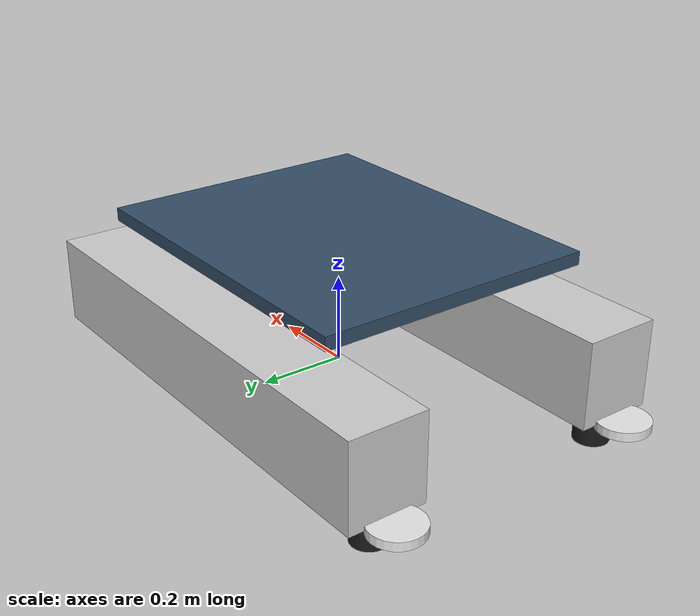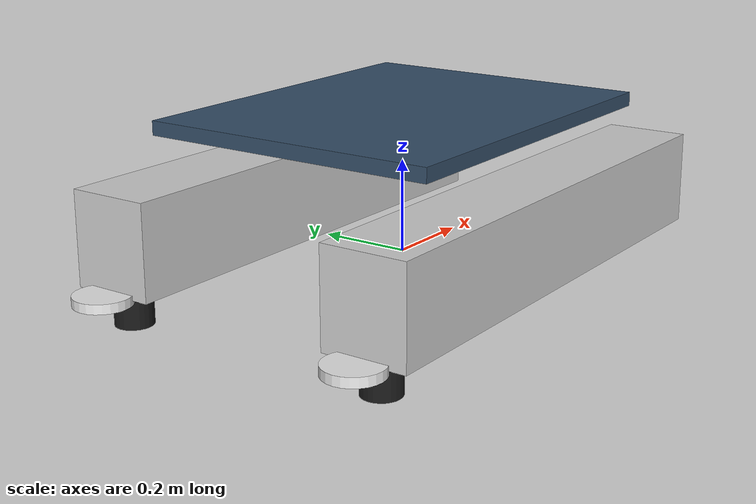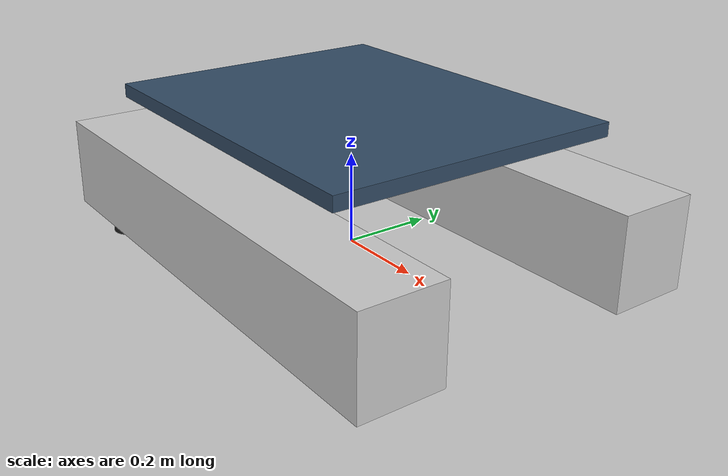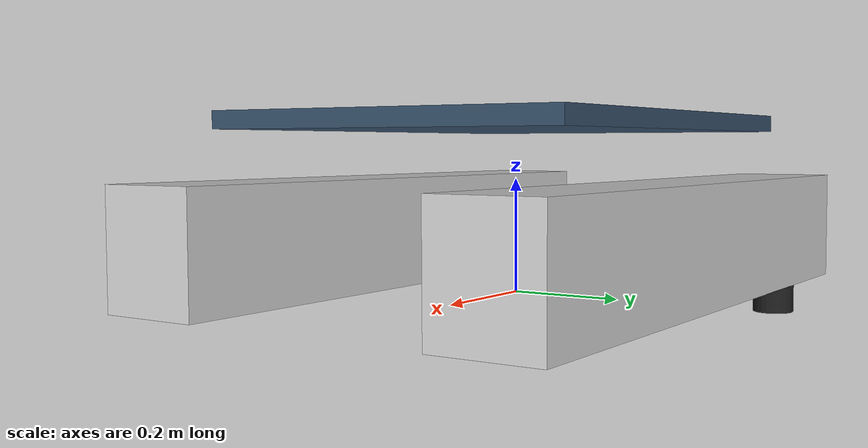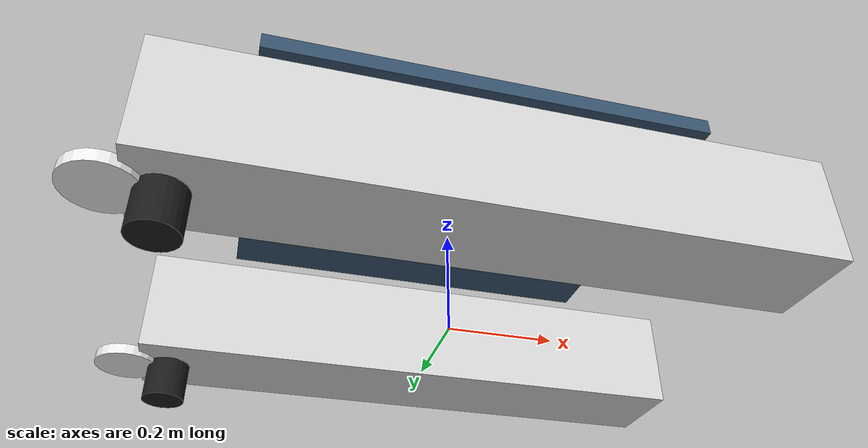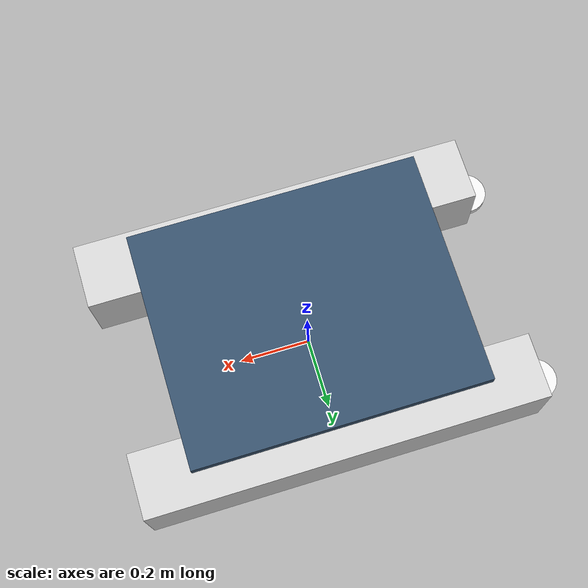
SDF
<?xml version="1.0"?>
<sdf version="1.6">
  <model name="ida_katamaran">
    <!-- Ana gövde linki -->
    <link name="base_link">
      <pose>0 0 0 0 0 0</pose>
      <inertial>
        <pose>0.028 0.008 0.029 0 0 0</pose>
        <mass>32.6</mass>
        <inertia>
          <ixx>0.72</ixx>
          <ixy>0</ixy>
          <ixz>0</ixz>
          <iyy>1.73</iyy>
          <iyz>0</iyz>
          <izz>2.16</izz>
        </inertia>
      </inertial>

      <!-- Sol gövde (float) -->
      <visual name="left_float_visual">
        <pose>0 0.30 0.10 0 0 0</pose>
        <geometry>
          <box>
            <size>1.11 0.18 0.20</size>
          </box>
        </geometry>
        <material>
          <diffuse>0.8 0.8 0.8 1</diffuse>
          <specular>0.2 0.2 0.2 1</specular>
        </material>
      </visual>
      <collision name="left_float_collision">
        <pose>0 0.30 0.10 0 0 0</pose>
        <geometry>
          <box>
            <size>1.11 0.18 0.20</size>
          </box>
        </geometry>
      </collision>

      <!-- Sağ gövde (float) -->
      <visual name="right_float_visual">
        <pose>0 -0.30 0.10 0 0 0</pose>
        <geometry>
          <box>
            <size>1.11 0.18 0.20</size>
          </box>
        </geometry>
        <material>
          <diffuse>0.8 0.8 0.8 1</diffuse>
          <specular>0.2 0.2 0.2 1</specular>
        </material>
      </visual>
      <collision name="right_float_collision">
        <pose>0 -0.30 0.10 0 0 0</pose>
        <geometry>
          <box>
            <size>1.11 0.18 0.20</size>
          </box>
        </geometry>
      </collision>

      <!-- Üst platform (deck) -->
      <visual name="deck_visual">
        <pose>0 0 0.30 0 0 0</pose>
        <geometry>
          <box>
            <size>0.80 0.65 0.03</size>
          </box>
        </geometry>
        <material>
          <diffuse>0.2 0.3 0.4 1</diffuse>
          <specular>0.1 0.1 0.1 1</specular>
        </material>
      </visual>
      <collision name="deck_collision">
        <pose>0 0 0.30 0 0 0</pose>
        <geometry>
          <box>
            <size>0.80 0.65 0.03</size>
          </box>
        </geometry>
      </collision>

      <!-- GPS sensörü -->
      <sensor name="gps_sensor" type="navsat">
        <pose>-0.35 0 0.35 0 0 0</pose>
        <always_on>true</always_on>
        <update_rate>10</update_rate>
        <gps/>
      </sensor>

      <!-- IMU sensörü -->
      <sensor name="imu_sensor" type="imu">
        <pose>0 0 0.25 0 0 0</pose>
        <always_on>true</always_on>
        <update_rate>100</update_rate>
        <imu>
          <angular_velocity>
            <x><noise type="gaussian"><mean>0</mean><stddev>0.009</stddev></noise></x>
            <y><noise type="gaussian"><mean>0</mean><stddev>0.009</stddev></noise></y>
            <z><noise type="gaussian"><mean>0</mean><stddev>0.009</stddev></noise></z>
          </angular_velocity>
          <linear_acceleration>
            <x><noise type="gaussian"><mean>0</mean><stddev>0.021</stddev></noise></x>
            <y><noise type="gaussian"><mean>0</mean><stddev>0.021</stddev></noise></y>
            <z><noise type="gaussian"><mean>0</mean><stddev>0.021</stddev></noise></z>
          </linear_acceleration>
          <orientation_reference_frame>
            <localization>ENU</localization>
          </orientation_reference_frame>
        </imu>
      </sensor>

      <!-- Kamera (RealSense D456 benzeri) -->
      <sensor name="front_camera" type="camera">
        <pose>0.50 0 0.32 0 0 0</pose>
        <camera>
          <horizontal_fov>1.047</horizontal_fov>
          <image>
            <width>640</width>
            <height>480</height>
            <format>R8G8B8</format>
          </image>
          <clip>
            <near>0.1</near>
            <far>100</far>
          </clip>
        </camera>
        <always_on>true</always_on>
        <update_rate>30</update_rate>
      </sensor>

      <!-- LiDAR (RPLiDAR S3 benzeri, 2D 360°) -->
      <sensor name="lidar_sensor" type="gpu_ray">
        <pose>0 0 0.45 0 0 0</pose>
        <ray>
          <scan>
            <horizontal>
              <samples>720</samples>
              <resolution>1</resolution>
              <min_angle>-3.14159</min_angle>
              <max_angle>3.14159</max_angle>
            </horizontal>
            <vertical>
              <samples>1</samples>
              <resolution>1</resolution>
              <min_angle>0</min_angle>
              <max_angle>0</max_angle>
            </vertical>
          </scan>
          <range>
            <min>0.15</min>
            <max>25.0</max>
            <resolution>0.01</resolution>
          </range>
        </ray>
        <always_on>true</always_on>
        <update_rate>10</update_rate>
        <visualize>true</visualize>
      </sensor>
    </link>

    <!-- Sol itki muhafazası -->
    <link name="left_housing_link">
      <pose>-0.50 0.30 0.0 0 0 0</pose>
      <inertial>
        <mass>1</mass>
        <inertia>
          <ixx>0.002</ixx><ixy>0</ixy><ixz>0</ixz>
          <iyy>0.002</iyy><iyz>0</iyz>
          <izz>0.001</izz>
        </inertia>
      </inertial>
      <visual name="left_housing_visual">
        <geometry>
          <cylinder>
            <length>0.15</length>
            <radius>0.04</radius>
          </cylinder>
        </geometry>
        <material>
          <diffuse>0.1 0.1 0.1 1</diffuse>
        </material>
      </visual>
      <collision name="left_housing_collision">
        <geometry>
          <cylinder>
            <length>0.15</length>
            <radius>0.04</radius>
          </cylinder>
        </geometry>
      </collision>
    </link>

    <!-- Sol pervane -->
    <link name="left_prop_link">
      <pose>-0.58 0.30 0.0 0 0 0</pose>
      <inertial>
        <mass>0.2</mass>
        <inertia>
          <ixx>0.0001</ixx><ixy>0</ixy><ixz>0</ixz>
          <iyy>0.0001</iyy><iyz>0</iyz>
          <izz>0.0002</izz>
        </inertia>
      </inertial>
      <visual name="left_prop_visual">
        <geometry>
          <cylinder>
            <length>0.02</length>
            <radius>0.06</radius>
          </cylinder>
        </geometry>
        <material>
          <diffuse>0.9 0.9 0.9 1</diffuse>
        </material>
      </visual>
      <collision name="left_prop_collision">
        <geometry>
          <cylinder>
            <length>0.02</length>
            <radius>0.06</radius>
          </cylinder>
        </geometry>
      </collision>
    </link>

    <!-- Sağ itki muhafazası -->
    <link name="right_housing_link">
      <pose>-0.50 -0.30 0.0 0 0 0</pose>
      <inertial>
        <mass>1</mass>
        <inertia>
          <ixx>0.002</ixx><ixy>0</ixy><ixz>0</ixz>
          <iyy>0.002</iyy><iyz>0</iyz>
          <izz>0.001</izz>
        </inertia>
      </inertial>
      <visual name="right_housing_visual">
        <geometry>
          <cylinder>
            <length>0.15</length>
            <radius>0.04</radius>
          </cylinder>
        </geometry>
        <material>
          <diffuse>0.1 0.1 0.1 1</diffuse>
        </material>
      </visual>
      <collision name="right_housing_collision">
        <geometry>
          <cylinder>
            <length>0.15</length>
            <radius>0.04</radius>
          </cylinder>
        </geometry>
      </collision>
    </link>

    <!-- Sağ pervane -->
    <link name="right_prop_link">
      <pose>-0.58 -0.30 0.0 0 0 0</pose>
      <inertial>
        <mass>0.2</mass>
        <inertia>
          <ixx>0.0001</ixx><ixy>0</ixy><ixz>0</ixz>
          <iyy>0.0001</iyy><iyz>0</iyz>
          <izz>0.0002</izz>
        </inertia>
      </inertial>
      <visual name="right_prop_visual">
        <geometry>
          <cylinder>
            <length>0.02</length>
            <radius>0.06</radius>
          </cylinder>
        </geometry>
        <material>
          <diffuse>0.9 0.9 0.9 1</diffuse>
        </material>
      </visual>
      <collision name="right_prop_collision">
        <geometry>
          <cylinder>
            <length>0.02</length>
            <radius>0.06</radius>
          </cylinder>
        </geometry>
      </collision>
    </link>

    <!-- Joint'ler -->
    <joint name="left_housing_joint" type="fixed">
      <parent>base_link</parent>
      <child>left_housing_link</child>
    </joint>

    <joint name="left_prop_joint" type="revolute">
      <pose>-0.58 0.30 0.0 0 0 0</pose>
      <parent>left_housing_link</parent>
      <child>left_prop_link</child>
      <axis>
        <xyz>1 0 0</xyz>
        <limit>
          <lower>-100</lower>
          <upper>100</upper>
          <effort>100</effort>
        </limit>
        <dynamics>
          <friction>1.0</friction>
          <damping>5.0</damping>
        </dynamics>
      </axis>
    </joint>

    <joint name="right_housing_joint" type="fixed">
      <parent>base_link</parent>
      <child>right_housing_link</child>
    </joint>

    <joint name="right_prop_joint" type="revolute">
      <pose>-0.58 -0.30 0.0 0 0 0</pose>
      <parent>right_housing_link</parent>
      <child>right_prop_link</child>
      <axis>
        <xyz>-1 0 0</xyz>
        <limit>
          <lower>-100</lower>
          <upper>100</upper>
          <effort>100</effort>
        </limit>
        <dynamics>
          <friction>1.0</friction>
          <damping>5.0</damping>
        </dynamics>
      </axis>
    </joint>

    <!-- VRX Surface plugin: Sol gövde -->
    <plugin filename="libSurface.so" name="vrx::Surface">
      <link_name>base_link</link_name>
      <hull_length>1.11</hull_length>
      <hull_radius>0.115</hull_radius>
      <fluid_level>0</fluid_level>
      <fluid_density>1025.9</fluid_density>
      <points>
        <point>0.55 0.30 0.0</point>
        <point>-0.55 0.30 0.0</point>
      </points>
      <wavefield>
        <topic>/vrx/wavefield/parameters</topic>
      </wavefield>
    </plugin>

    <!-- VRX Surface plugin: Sağ gövde -->
    <plugin filename="libSurface.so" name="vrx::Surface">
      <link_name>base_link</link_name>
      <hull_length>1.11</hull_length>
      <hull_radius>0.115</hull_radius>
      <fluid_level>0</fluid_level>
      <fluid_density>1025.9</fluid_density>
      <points>
        <point>0.55 -0.30 0.0</point>
        <point>-0.55 -0.30 0.0</point>
      </points>
      <wavefield>
        <topic>/vrx/wavefield/parameters</topic>
      </wavefield>
    </plugin>

    <!-- VRX Simple Hydrodynamics -->
    <plugin filename="libSimpleHydrodynamics.so" name="vrx::SimpleHydrodynamics">
      <link_name>base_link</link_name>
      <xDotU>0.0</xDotU>
      <yDotV>0.0</yDotV>
      <nDotR>0.0</nDotR>
      <xU>18.56</xU>
      <xUU>18.56</xUU>
      <yV>36.45</yV>
      <yVV>10.93</yVV>
      <zW>88.23</zW>
      <kP>18.0</kP>
      <kPP>36.0</kPP>
      <mQ>36.0</mQ>
      <mQQ>35.0</mQQ>
      <nR>8.0</nR>
      <nRR>4.0</nRR>
    </plugin>

    <!-- Gazebo Thruster: Sol -->
    <plugin filename="gz-sim-thruster-system" name="gz::sim::systems::Thruster">
      <joint_name>left_prop_joint</joint_name>
      <thrust_coefficient>0.0008</thrust_coefficient>
      <fluid_density>1025.9</fluid_density>
      <propeller_diameter>0.10</propeller_diameter>
      <velocity_control>false</velocity_control>
      <p_gain>0.0</p_gain>
    </plugin>

    <!-- Gazebo Thruster: Sağ -->
    <plugin filename="gz-sim-thruster-system" name="gz::sim::systems::Thruster">
      <joint_name>right_prop_joint</joint_name>
      <thrust_coefficient>0.0008</thrust_coefficient>
      <fluid_density>1025.9</fluid_density>
      <propeller_diameter>0.10</propeller_diameter>
      <velocity_control>false</velocity_control>
      <p_gain>0.0</p_gain>
    </plugin>

  </model>
</sdf>
